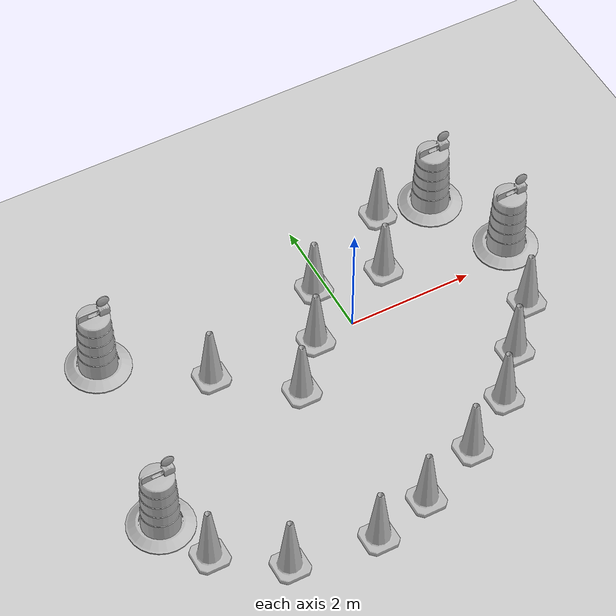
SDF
<sdf version="1.7">
 <world name="default">
  <light name="sun" type="directional">
   <pose>0 0 10 0 -0 0</pose>
   <diffuse>0.8 0.8 0.8 1</diffuse>
   <specular>0.2 0.2 0.2 1</specular>
   <attenuation>
    <range>1000</range>
    <constant>0.9</constant>
    <linear>0.01</linear>
    <quadratic>0.001</quadratic>
   </attenuation>
   <direction>-0.5 0.1 -0.9</direction>
   <spot><inner_angle>0</inner_angle><outer_angle>0</outer_angle><falloff>0</falloff></spot>
  </light>
  <model name="ground_plane">
   <static>1</static>
   <link name="link">
    <collision name="collision">
     <geometry><plane><normal>0 0 1</normal><size>100 100</size></plane></geometry>
     <surface>
      <contact><collide_bitmask>65535</collide_bitmask></contact>
      <friction><ode><mu>100</mu><mu2>50</mu2></ode></friction>
     </surface>
    </collision>
    <visual name="visual">
     <cast_shadows>0</cast_shadows>
     <geometry><plane><normal>0 0 1</normal><size>100 100</size></plane></geometry>
     <material>
      <script><uri>file://media/materials/scripts/gazebo.material</uri><name>Gazebo/Grey</name></script>
     </material>
    </visual>
   </link>
  </model>
  <gravity>0 0 -9.8</gravity>
  <magnetic_field>6e-06 2.3e-05 -4.2e-05</magnetic_field>
  <atmosphere type="adiabatic"/>
  <physics type="ode">
   <max_step_size>0.001</max_step_size>
   <real_time_factor>1</real_time_factor>
   <real_time_update_rate>1000</real_time_update_rate>
  </physics>
  <scene><ambient>0.4 0.4 0.4 1</ambient><background>0.7 0.7 0.7 1</background><shadows>0</shadows></scene>
  <spherical_coordinates>
   <surface_model>EARTH_WGS84</surface_model>
   <latitude_deg>0</latitude_deg>
   <longitude_deg>0</longitude_deg>
   <elevation>0</elevation>
   <heading_deg>0</heading_deg>
  </spherical_coordinates>
  <model name="Construction Barrel">
   <link name="link">
    <inertial>
     <pose>0 0 0.4 0 -0 0</pose>
     <mass>500</mass>
     <inertia><ixx>51.2096</ixx><iyy>51.2096</iyy><izz>25</izz><ixy>0</ixy><ixz>0</ixz><iyz>0</iyz></inertia>
    </inertial>
    <collision name="collision">
     <geometry><mesh><uri>model://construction_barrel/meshes/construction_barrel.dae</uri></mesh></geometry>
    </collision>
    <visual name="visual">
     <geometry><mesh><uri>model://construction_barrel/meshes/construction_barrel.dae</uri></mesh></geometry>
    </visual>
   </link>
   <pose>-3.72331 1.09464 0 0 0 -2.9e-05</pose>
  </model>
  <model name="Construction Barrel_clone">
   <link name="link">
    <inertial>
     <pose>0 0 0.4 0 -0 0</pose>
     <mass>500</mass>
     <inertia><ixx>51.2096</ixx><iyy>51.2096</iyy><izz>25</izz><ixy>0</ixy><ixz>0</ixz><iyz>0</iyz></inertia>
    </inertial>
    <collision name="collision">
     <geometry><mesh><uri>model://construction_barrel/meshes/construction_barrel.dae</uri></mesh></geometry>
    </collision>
    <visual name="visual">
     <geometry><mesh><uri>model://construction_barrel/meshes/construction_barrel.dae</uri></mesh></geometry>
    </visual>
   </link>
   <pose>-4.15672 -1.88109 -2e-06 -5e-06 -4e-06 -2.5e-05</pose>
  </model>
  <model name="Construction Cone">
   <link name="link">
    <collision name="collision">
     <geometry>
      <mesh><scale>10 10 10</scale><uri>model://construction_cone/meshes/construction_cone.dae</uri></mesh>
     </geometry>
    </collision>
    <visual name="visual">
     <geometry>
      <mesh><scale>10 10 10</scale><uri>model://construction_cone/meshes/construction_cone.dae</uri></mesh>
     </geometry>
    </visual>
    <inertial>
     <inertia><ixx>1</ixx><ixy>0</ixy><ixz>0</ixz><iyy>1</iyy><iyz>0</iyz><izz>1</izz></inertia>
     <mass>1</mass>
    </inertial>
   </link>
   <pose>-2.87444 -3.37855 -0 0 -0 0</pose>
  </model>
  <model name="Construction Cone_clone">
   <link name="link">
    <collision name="collision">
     <geometry>
      <mesh><scale>10 10 10</scale><uri>model://construction_cone/meshes/construction_cone.dae</uri></mesh>
     </geometry>
    </collision>
    <visual name="visual">
     <geometry>
      <mesh><scale>10 10 10</scale><uri>model://construction_cone/meshes/construction_cone.dae</uri></mesh>
     </geometry>
    </visual>
    <inertial>
     <inertia><ixx>1</ixx><ixy>0</ixy><ixz>0</ixz><iyy>1</iyy><iyz>0</iyz><izz>1</izz></inertia>
     <mass>1</mass>
    </inertial>
   </link>
   <pose>-1.55256 -3.55694 -0 0 -0 0</pose>
  </model>
  <model name="Construction Cone_clone_0">
   <link name="link">
    <collision name="collision">
     <geometry>
      <mesh><scale>10 10 10</scale><uri>model://construction_cone/meshes/construction_cone.dae</uri></mesh>
     </geometry>
    </collision>
    <visual name="visual">
     <geometry>
      <mesh><scale>10 10 10</scale><uri>model://construction_cone/meshes/construction_cone.dae</uri></mesh>
     </geometry>
    </visual>
    <inertial>
     <inertia><ixx>1</ixx><ixy>0</ixy><ixz>0</ixz><iyy>1</iyy><iyz>0</iyz><izz>1</izz></inertia>
     <mass>1</mass>
    </inertial>
   </link>
   <pose>-2.34359 0.089467 -0 0 -0 0</pose>
  </model>
  <model name="Construction Cone_clone_1">
   <link name="link">
    <collision name="collision">
     <geometry>
      <mesh><scale>10 10 10</scale><uri>model://construction_cone/meshes/construction_cone.dae</uri></mesh>
     </geometry>
    </collision>
    <visual name="visual">
     <geometry>
      <mesh><scale>10 10 10</scale><uri>model://construction_cone/meshes/construction_cone.dae</uri></mesh>
     </geometry>
    </visual>
    <inertial>
     <inertia><ixx>1</ixx><ixy>0</ixy><ixz>0</ixz><iyy>1</iyy><iyz>0</iyz><izz>1</izz></inertia>
     <mass>1</mass>
    </inertial>
   </link>
   <pose>-1.28812 -0.775064 -0 1e-06 -0 0</pose>
  </model>
  <model name="Construction Cone_clone_2">
   <link name="link">
    <collision name="collision">
     <geometry>
      <mesh><scale>10 10 10</scale><uri>model://construction_cone/meshes/construction_cone.dae</uri></mesh>
     </geometry>
    </collision>
    <visual name="visual">
     <geometry>
      <mesh><scale>10 10 10</scale><uri>model://construction_cone/meshes/construction_cone.dae</uri></mesh>
     </geometry>
    </visual>
    <inertial>
     <inertia><ixx>1</ixx><ixy>0</ixy><ixz>0</ixz><iyy>1</iyy><iyz>0</iyz><izz>1</izz></inertia>
     <mass>1</mass>
    </inertial>
   </link>
   <pose>-0.635257 -3.31178 -0 0 -0 0</pose>
  </model>
  <model name="Construction Cone_clone_3">
   <link name="link">
    <collision name="collision">
     <geometry>
      <mesh><scale>10 10 10</scale><uri>model://construction_cone/meshes/construction_cone.dae</uri></mesh>
     </geometry>
    </collision>
    <visual name="visual">
     <geometry>
      <mesh><scale>10 10 10</scale><uri>model://construction_cone/meshes/construction_cone.dae</uri></mesh>
     </geometry>
    </visual>
    <inertial>
     <inertia><ixx>1</ixx><ixy>0</ixy><ixz>0</ixz><iyy>1</iyy><iyz>0</iyz><izz>1</izz></inertia>
     <mass>1</mass>
    </inertial>
   </link>
   <pose>-0.652674 -0.035521 -4e-06 4e-06 -1e-06 0</pose>
  </model>
  <model name="Construction Cone_clone_4">
   <link name="link">
    <collision name="collision">
     <geometry>
      <mesh><scale>10 10 10</scale><uri>model://construction_cone/meshes/construction_cone.dae</uri></mesh>
     </geometry>
    </collision>
    <visual name="visual">
     <geometry>
      <mesh><scale>10 10 10</scale><uri>model://construction_cone/meshes/construction_cone.dae</uri></mesh>
     </geometry>
    </visual>
    <inertial>
     <inertia><ixx>1</ixx><ixy>0</ixy><ixz>0</ixz><iyy>1</iyy><iyz>0</iyz><izz>1</izz></inertia>
     <mass>1</mass>
    </inertial>
   </link>
   <pose>0.39292 -2.86808 -2e-06 -3e-06 -1e-06 -0</pose>
  </model>
  <model name="Construction Cone_clone_5">
   <link name="link">
    <collision name="collision">
     <geometry>
      <mesh><scale>10 10 10</scale><uri>model://construction_cone/meshes/construction_cone.dae</uri></mesh>
     </geometry>
    </collision>
    <visual name="visual">
     <geometry>
      <mesh><scale>10 10 10</scale><uri>model://construction_cone/meshes/construction_cone.dae</uri></mesh>
     </geometry>
    </visual>
    <inertial>
     <inertia><ixx>1</ixx><ixy>0</ixy><ixz>0</ixz><iyy>1</iyy><iyz>0</iyz><izz>1</izz></inertia>
     <mass>1</mass>
    </inertial>
   </link>
   <pose>1.28002 -2.29971 -1e-06 2e-06 2e-06 0</pose>
  </model>
  <model name="Construction Cone_clone_6">
   <link name="link">
    <collision name="collision">
     <geometry>
      <mesh><scale>10 10 10</scale><uri>model://construction_cone/meshes/construction_cone.dae</uri></mesh>
     </geometry>
    </collision>
    <visual name="visual">
     <geometry>
      <mesh><scale>10 10 10</scale><uri>model://construction_cone/meshes/construction_cone.dae</uri></mesh>
     </geometry>
    </visual>
    <inertial>
     <inertia><ixx>1</ixx><ixy>0</ixy><ixz>0</ixz><iyy>1</iyy><iyz>0</iyz><izz>1</izz></inertia>
     <mass>1</mass>
    </inertial>
   </link>
   <pose>-0.198619 0.857923 -0 0 -0 0</pose>
  </model>
  <model name="Construction Cone_clone_7">
   <link name="link">
    <collision name="collision">
     <geometry>
      <mesh><scale>10 10 10</scale><uri>model://construction_cone/meshes/construction_cone.dae</uri></mesh>
     </geometry>
    </collision>
    <visual name="visual">
     <geometry>
      <mesh><scale>10 10 10</scale><uri>model://construction_cone/meshes/construction_cone.dae</uri></mesh>
     </geometry>
    </visual>
    <inertial>
     <inertia><ixx>1</ixx><ixy>0</ixy><ixz>0</ixz><iyy>1</iyy><iyz>0</iyz><izz>1</izz></inertia>
     <mass>1</mass>
    </inertial>
   </link>
   <pose>0.919179 0.675574 -0 0 -0 0</pose>
  </model>
  <model name="Construction Cone_clone_8">
   <link name="link">
    <collision name="collision">
     <geometry>
      <mesh><scale>10 10 10</scale><uri>model://construction_cone/meshes/construction_cone.dae</uri></mesh>
     </geometry>
    </collision>
    <visual name="visual">
     <geometry>
      <mesh><scale>10 10 10</scale><uri>model://construction_cone/meshes/construction_cone.dae</uri></mesh>
     </geometry>
    </visual>
    <inertial>
     <inertia><ixx>1</ixx><ixy>0</ixy><ixz>0</ixz><iyy>1</iyy><iyz>0</iyz><izz>1</izz></inertia>
     <mass>1</mass>
    </inertial>
   </link>
   <pose>1.87861 -1.61462 -9e-06 -0 -0 -0</pose>
  </model>
  <model name="Construction Cone_clone_9">
   <link name="link">
    <collision name="collision">
     <geometry>
      <mesh><scale>10 10 10</scale><uri>model://construction_cone/meshes/construction_cone.dae</uri></mesh>
     </geometry>
    </collision>
    <visual name="visual">
     <geometry>
      <mesh><scale>10 10 10</scale><uri>model://construction_cone/meshes/construction_cone.dae</uri></mesh>
     </geometry>
    </visual>
    <inertial>
     <inertia><ixx>1</ixx><ixy>0</ixy><ixz>0</ixz><iyy>1</iyy><iyz>0</iyz><izz>1</izz></inertia>
     <mass>1</mass>
    </inertial>
   </link>
   <pose>2.52566 -0.900085 -0 0 -0 0</pose>
  </model>
  <model name="Construction Cone_clone_10">
   <link name="link">
    <collision name="collision">
     <geometry>
      <mesh><scale>10 10 10</scale><uri>model://construction_cone/meshes/construction_cone.dae</uri></mesh>
     </geometry>
    </collision>
    <visual name="visual">
     <geometry>
      <mesh><scale>10 10 10</scale><uri>model://construction_cone/meshes/construction_cone.dae</uri></mesh>
     </geometry>
    </visual>
    <inertial>
     <inertia><ixx>1</ixx><ixy>0</ixy><ixz>0</ixz><iyy>1</iyy><iyz>0</iyz><izz>1</izz></inertia>
     <mass>1</mass>
    </inertial>
   </link>
   <pose>1.39101 1.6938 -0 0 -0 0</pose>
  </model>
  <model name="Construction Cone_clone_11">
   <link name="link">
    <collision name="collision">
     <geometry>
      <mesh><scale>10 10 10</scale><uri>model://construction_cone/meshes/construction_cone.dae</uri></mesh>
     </geometry>
    </collision>
    <visual name="visual">
     <geometry>
      <mesh><scale>10 10 10</scale><uri>model://construction_cone/meshes/construction_cone.dae</uri></mesh>
     </geometry>
    </visual>
    <inertial>
     <inertia><ixx>1</ixx><ixy>0</ixy><ixz>0</ixz><iyy>1</iyy><iyz>0</iyz><izz>1</izz></inertia>
     <mass>1</mass>
    </inertial>
   </link>
   <pose>-3.79284 -2.70141 -0 0 -0 0</pose>
  </model>
  <model name="Construction Barrel_clone_clone">
   <link name="link">
    <inertial>
     <pose>0 0 0.4 0 -0 0</pose>
     <mass>500</mass>
     <inertia><ixx>51.2096</ixx><iyy>51.2096</iyy><izz>25</izz><ixy>0</ixy><ixz>0</ixz><iyz>0</iyz></inertia>
    </inertial>
    <collision name="collision">
     <geometry><mesh><uri>model://construction_barrel/meshes/construction_barrel.dae</uri></mesh></geometry>
    </collision>
    <visual name="visual">
     <geometry><mesh><uri>model://construction_barrel/meshes/construction_barrel.dae</uri></mesh></geometry>
    </visual>
   </link>
   <pose>2.24636 1.54504 0 0 0 -2.7e-05</pose>
  </model>
  <model name="Construction Barrel_clone_clone_0">
   <link name="link">
    <inertial>
     <pose>0 0 0.4 0 -0 0</pose>
     <mass>500</mass>
     <inertia><ixx>51.2096</ixx><iyy>51.2096</iyy><izz>25</izz><ixy>0</ixy><ixz>0</ixz><iyz>0</iyz></inertia>
    </inertial>
    <collision name="collision">
     <geometry><mesh><uri>model://construction_barrel/meshes/construction_barrel.dae</uri></mesh></geometry>
    </collision>
    <visual name="visual">
     <geometry><mesh><uri>model://construction_barrel/meshes/construction_barrel.dae</uri></mesh></geometry>
    </visual>
   </link>
   <pose>2.83622 0.2316 -0 0 0 -2.4e-05</pose>
  </model>
 </world>
</sdf>
